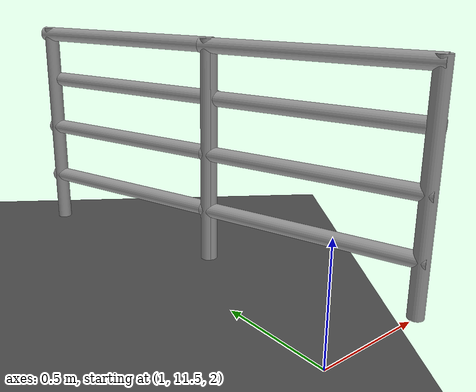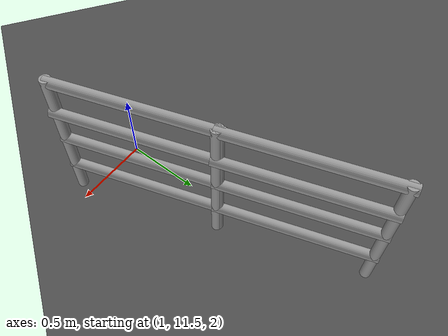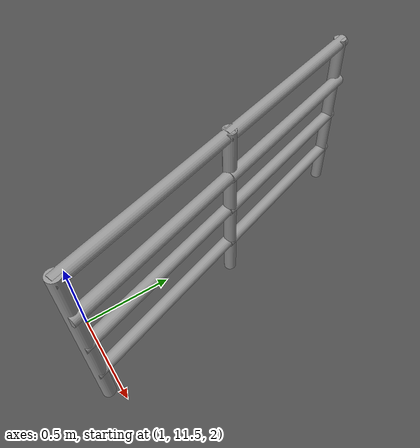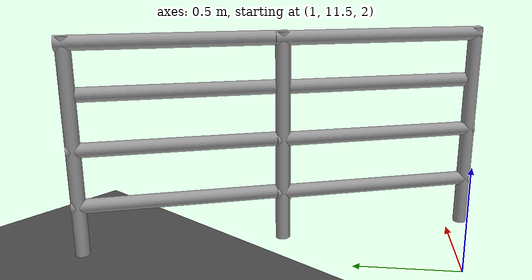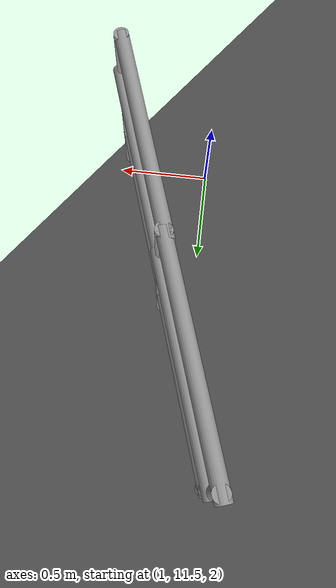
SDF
<sdf version="1.6">
 <world name="default">
  <model name="ground_plane">
   <static>1</static>
   <link name="link">
    <collision name="collision">
     <geometry><plane><normal>0 0 1</normal><size>100 100</size></plane></geometry>
     <surface><friction><ode><mu>100</mu><mu2>50</mu2></ode></friction></surface>
    </collision>
    <visual name="visual">
     <cast_shadows>0</cast_shadows>
     <geometry><plane><normal>0 0 1</normal><size>100 100</size></plane></geometry>
     <material>
      <script><uri>file://media/materials/scripts/gazebo.material</uri><name>Gazebo/Grey</name></script>
     </material>
    </visual>
   </link>
  </model>
  <model name="indoor_fence_0">
   <link name="link">
    <inertial>
     <mass>1</mass>
     <inertia><ixx>0.145833</ixx><ixy>0</ixy><ixz>0</ixz><iyy>0.145833</iyy><iyz>0</iyz><izz>0.125</izz></inertia>
    </inertial>
    <pose>0.071704 -0.128855 0 0 -0 0</pose>
    <visual name="visual">
     <geometry><cylinder><radius>0.0332942</radius><length>1</length></cylinder></geometry>
     <material>
      <script><name>Gazebo/Grey</name><uri>file://media/materials/scripts/gazebo.material</uri></script>
      <shader type="pixel"/>
     </material>
    </visual>
    <collision name="collision">
     <geometry><cylinder><radius>0.033294</radius><length>1</length></cylinder></geometry>
     <surface>
      <friction>
       <ode><mu>1</mu><mu2>1</mu2><fdir1>0 0 0</fdir1><slip1>0</slip1><slip2>0</slip2></ode>
       <torsional>
        <coefficient>1</coefficient>
        <patch_radius>0</patch_radius>
        <surface_radius>0</surface_radius>
        <use_patch_radius>1</use_patch_radius>
        <ode><slip>0</slip></ode>
       </torsional>
      </friction>
      <bounce><restitution_coefficient>0</restitution_coefficient><threshold>1e+06</threshold></bounce>
      <contact>
       <collide_without_contact>0</collide_without_contact>
       <collide_without_contact_bitmask>1</collide_without_contact_bitmask>
       <collide_bitmask>1</collide_bitmask>
       <ode>
        <soft_cfm>0</soft_cfm>
        <soft_erp>0.2</soft_erp>
        <kp>1e+13</kp>
        <kd>1</kd>
        <max_vel>0.01</max_vel>
        <min_depth>0</min_depth>
       </ode>
       <bullet>
        <split_impulse>1</split_impulse>
        <split_impulse_penetration_threshold>-0.01</split_impulse_penetration_threshold>
        <soft_cfm>0</soft_cfm>
        <soft_erp>0.2</soft_erp>
        <kp>1e+13</kp>
        <kd>1</kd>
       </bullet>
      </contact>
     </surface>
    </collision>
   </link>
   <link name="link_clone">
    <inertial>
     <mass>1</mass>
     <inertia><ixx>0.145833</ixx><ixy>0</ixy><ixz>0</ixz><iyy>0.145833</iyy><iyz>0</iyz><izz>0.125</izz></inertia>
    </inertial>
    <pose>0.369391 -1.02864 0 0 -0 0</pose>
    <visual name="visual">
     <geometry><cylinder><radius>0.0332942</radius><length>1</length></cylinder></geometry>
     <material>
      <script><name>Gazebo/Grey</name><uri>file://media/materials/scripts/gazebo.material</uri></script>
      <shader type="pixel"/>
     </material>
    </visual>
    <collision name="collision">
     <geometry><cylinder><radius>0.033294</radius><length>1</length></cylinder></geometry>
     <surface>
      <friction>
       <ode><mu>1</mu><mu2>1</mu2><fdir1>0 0 0</fdir1><slip1>0</slip1><slip2>0</slip2></ode>
       <torsional>
        <coefficient>1</coefficient>
        <patch_radius>0</patch_radius>
        <surface_radius>0</surface_radius>
        <use_patch_radius>1</use_patch_radius>
        <ode><slip>0</slip></ode>
       </torsional>
      </friction>
      <bounce><restitution_coefficient>0</restitution_coefficient><threshold>1e+06</threshold></bounce>
      <contact>
       <collide_without_contact>0</collide_without_contact>
       <collide_without_contact_bitmask>1</collide_without_contact_bitmask>
       <collide_bitmask>1</collide_bitmask>
       <ode>
        <soft_cfm>0</soft_cfm>
        <soft_erp>0.2</soft_erp>
        <kp>1e+13</kp>
        <kd>1</kd>
        <max_vel>0.01</max_vel>
        <min_depth>0</min_depth>
       </ode>
       <bullet>
        <split_impulse>1</split_impulse>
        <split_impulse_penetration_threshold>-0.01</split_impulse_penetration_threshold>
        <soft_cfm>0</soft_cfm>
        <soft_erp>0.2</soft_erp>
        <kp>1e+13</kp>
        <kd>1</kd>
       </bullet>
      </contact>
     </surface>
    </collision>
   </link>
   <link name="link_clone_0">
    <inertial>
     <mass>1</mass>
     <inertia><ixx>0.145833</ixx><ixy>0</ixy><ixz>0</ixz><iyy>0.145833</iyy><iyz>0</iyz><izz>0.125</izz></inertia>
    </inertial>
    <pose>0.220035 -0.575022 -0.262394 -1.57275 0.000646 0.319166</pose>
    <visual name="visual">
     <geometry><cylinder><radius>0.0332942</radius><length>1</length></cylinder></geometry>
     <material>
      <script><name>Gazebo/Grey</name><uri>file://media/materials/scripts/gazebo.material</uri></script>
      <shader type="pixel"/>
     </material>
    </visual>
    <collision name="collision">
     <geometry><cylinder><radius>0.033294</radius><length>1</length></cylinder></geometry>
     <surface>
      <friction>
       <ode><mu>1</mu><mu2>1</mu2><fdir1>0 0 0</fdir1><slip1>0</slip1><slip2>0</slip2></ode>
       <torsional>
        <coefficient>1</coefficient>
        <patch_radius>0</patch_radius>
        <surface_radius>0</surface_radius>
        <use_patch_radius>1</use_patch_radius>
        <ode><slip>0</slip></ode>
       </torsional>
      </friction>
      <bounce><restitution_coefficient>0</restitution_coefficient><threshold>1e+06</threshold></bounce>
      <contact>
       <collide_without_contact>0</collide_without_contact>
       <collide_without_contact_bitmask>1</collide_without_contact_bitmask>
       <collide_bitmask>1</collide_bitmask>
       <ode>
        <soft_cfm>0</soft_cfm>
        <soft_erp>0.2</soft_erp>
        <kp>1e+13</kp>
        <kd>1</kd>
        <max_vel>0.01</max_vel>
        <min_depth>0</min_depth>
       </ode>
       <bullet>
        <split_impulse>1</split_impulse>
        <split_impulse_penetration_threshold>-0.01</split_impulse_penetration_threshold>
        <soft_cfm>0</soft_cfm>
        <soft_erp>0.2</soft_erp>
        <kp>1e+13</kp>
        <kd>1</kd>
       </bullet>
      </contact>
     </surface>
    </collision>
   </link>
   <link name="link_clone_0_clone">
    <inertial>
     <mass>1</mass>
     <inertia><ixx>0.145833</ixx><ixy>0</ixy><ixz>0</ixz><iyy>0.145833</iyy><iyz>0</iyz><izz>0.125</izz></inertia>
    </inertial>
    <pose>0.220715 -0.57597 9e-06 -1.57275 0.000646 0.319166</pose>
    <visual name="visual">
     <geometry><cylinder><radius>0.0332942</radius><length>1</length></cylinder></geometry>
     <material>
      <script><name>Gazebo/Grey</name><uri>file://media/materials/scripts/gazebo.material</uri></script>
      <shader type="pixel"/>
     </material>
    </visual>
    <collision name="collision">
     <geometry><cylinder><radius>0.033294</radius><length>1</length></cylinder></geometry>
     <surface>
      <friction>
       <ode><mu>1</mu><mu2>1</mu2><fdir1>0 0 0</fdir1><slip1>0</slip1><slip2>0</slip2></ode>
       <torsional>
        <coefficient>1</coefficient>
        <patch_radius>0</patch_radius>
        <surface_radius>0</surface_radius>
        <use_patch_radius>1</use_patch_radius>
        <ode><slip>0</slip></ode>
       </torsional>
      </friction>
      <bounce><restitution_coefficient>0</restitution_coefficient><threshold>1e+06</threshold></bounce>
      <contact>
       <collide_without_contact>0</collide_without_contact>
       <collide_without_contact_bitmask>1</collide_without_contact_bitmask>
       <collide_bitmask>1</collide_bitmask>
       <ode>
        <soft_cfm>0</soft_cfm>
        <soft_erp>0.2</soft_erp>
        <kp>1e+13</kp>
        <kd>1</kd>
        <max_vel>0.01</max_vel>
        <min_depth>0</min_depth>
       </ode>
       <bullet>
        <split_impulse>1</split_impulse>
        <split_impulse_penetration_threshold>-0.01</split_impulse_penetration_threshold>
        <soft_cfm>0</soft_cfm>
        <soft_erp>0.2</soft_erp>
        <kp>1e+13</kp>
        <kd>1</kd>
       </bullet>
      </contact>
     </surface>
    </collision>
   </link>
   <link name="link_clone_0_clone_0">
    <inertial>
     <mass>1</mass>
     <inertia><ixx>0.145833</ixx><ixy>0</ixy><ixz>0</ixz><iyy>0.145833</iyy><iyz>0</iyz><izz>0.125</izz></inertia>
    </inertial>
    <pose>0.236881 -0.573625 0.245272 -1.57275 0.000646 0.319166</pose>
    <visual name="visual">
     <geometry><cylinder><radius>0.0332942</radius><length>1</length></cylinder></geometry>
     <material>
      <script><name>Gazebo/Grey</name><uri>file://media/materials/scripts/gazebo.material</uri></script>
      <shader type="pixel"/>
     </material>
    </visual>
    <collision name="collision">
     <geometry><cylinder><radius>0.033294</radius><length>1</length></cylinder></geometry>
     <surface>
      <friction>
       <ode><mu>1</mu><mu2>1</mu2><fdir1>0 0 0</fdir1><slip1>0</slip1><slip2>0</slip2></ode>
       <torsional>
        <coefficient>1</coefficient>
        <patch_radius>0</patch_radius>
        <surface_radius>0</surface_radius>
        <use_patch_radius>1</use_patch_radius>
        <ode><slip>0</slip></ode>
       </torsional>
      </friction>
      <bounce><restitution_coefficient>0</restitution_coefficient><threshold>1e+06</threshold></bounce>
      <contact>
       <collide_without_contact>0</collide_without_contact>
       <collide_without_contact_bitmask>1</collide_without_contact_bitmask>
       <collide_bitmask>1</collide_bitmask>
       <ode>
        <soft_cfm>0</soft_cfm>
        <soft_erp>0.2</soft_erp>
        <kp>1e+13</kp>
        <kd>1</kd>
        <max_vel>0.01</max_vel>
        <min_depth>0</min_depth>
       </ode>
       <bullet>
        <split_impulse>1</split_impulse>
        <split_impulse_penetration_threshold>-0.01</split_impulse_penetration_threshold>
        <soft_cfm>0</soft_cfm>
        <soft_erp>0.2</soft_erp>
        <kp>1e+13</kp>
        <kd>1</kd>
       </bullet>
      </contact>
     </surface>
    </collision>
   </link>
   <link name="link_clone_0_clone_1">
    <inertial>
     <mass>1</mass>
     <inertia><ixx>0.145833</ixx><ixy>0</ixy><ixz>0</ixz><iyy>0.145833</iyy><iyz>0</iyz><izz>0.125</izz></inertia>
    </inertial>
    <pose>0.215457 -0.570916 0.471531 -1.57275 0.000646 0.319166</pose>
    <visual name="visual">
     <geometry><cylinder><radius>0.0332942</radius><length>1</length></cylinder></geometry>
     <material>
      <script><name>Gazebo/Grey</name><uri>file://media/materials/scripts/gazebo.material</uri></script>
      <shader type="pixel"/>
     </material>
    </visual>
    <collision name="collision">
     <geometry><cylinder><radius>0.033294</radius><length>1</length></cylinder></geometry>
     <surface>
      <friction>
       <ode><mu>1</mu><mu2>1</mu2><fdir1>0 0 0</fdir1><slip1>0</slip1><slip2>0</slip2></ode>
       <torsional>
        <coefficient>1</coefficient>
        <patch_radius>0</patch_radius>
        <surface_radius>0</surface_radius>
        <use_patch_radius>1</use_patch_radius>
        <ode><slip>0</slip></ode>
       </torsional>
      </friction>
      <bounce><restitution_coefficient>0</restitution_coefficient><threshold>1e+06</threshold></bounce>
      <contact>
       <collide_without_contact>0</collide_without_contact>
       <collide_without_contact_bitmask>1</collide_without_contact_bitmask>
       <collide_bitmask>1</collide_bitmask>
       <ode>
        <soft_cfm>0</soft_cfm>
        <soft_erp>0.2</soft_erp>
        <kp>1e+13</kp>
        <kd>1</kd>
        <max_vel>0.01</max_vel>
        <min_depth>0</min_depth>
       </ode>
       <bullet>
        <split_impulse>1</split_impulse>
        <split_impulse_penetration_threshold>-0.01</split_impulse_penetration_threshold>
        <soft_cfm>0</soft_cfm>
        <soft_erp>0.2</soft_erp>
        <kp>1e+13</kp>
        <kd>1</kd>
       </bullet>
      </contact>
     </surface>
    </collision>
   </link>
   <static>1</static>
   <pose>1.07576 12.4722 2.56606 0 -0 0</pose>
  </model>
  <model name="indoor_fence_1">
   <link name="link">
    <inertial>
     <mass>1</mass>
     <inertia><ixx>0.145833</ixx><ixy>0</ixy><ixz>0</ixz><iyy>0.145833</iyy><iyz>0</iyz><izz>0.125</izz></inertia>
    </inertial>
    <pose>0.071704 -0.128855 0 0 -0 0</pose>
    <visual name="visual">
     <geometry><cylinder><radius>0.0332942</radius><length>1</length></cylinder></geometry>
     <material>
      <script><name>Gazebo/Grey</name><uri>file://media/materials/scripts/gazebo.material</uri></script>
      <shader type="pixel"/>
     </material>
    </visual>
    <collision name="collision">
     <geometry><cylinder><radius>0.033294</radius><length>1</length></cylinder></geometry>
     <surface>
      <friction>
       <ode><mu>1</mu><mu2>1</mu2><fdir1>0 0 0</fdir1><slip1>0</slip1><slip2>0</slip2></ode>
       <torsional>
        <coefficient>1</coefficient>
        <patch_radius>0</patch_radius>
        <surface_radius>0</surface_radius>
        <use_patch_radius>1</use_patch_radius>
        <ode><slip>0</slip></ode>
       </torsional>
      </friction>
      <bounce><restitution_coefficient>0</restitution_coefficient><threshold>1e+06</threshold></bounce>
      <contact>
       <collide_without_contact>0</collide_without_contact>
       <collide_without_contact_bitmask>1</collide_without_contact_bitmask>
       <collide_bitmask>1</collide_bitmask>
       <ode>
        <soft_cfm>0</soft_cfm>
        <soft_erp>0.2</soft_erp>
        <kp>1e+13</kp>
        <kd>1</kd>
        <max_vel>0.01</max_vel>
        <min_depth>0</min_depth>
       </ode>
       <bullet>
        <split_impulse>1</split_impulse>
        <split_impulse_penetration_threshold>-0.01</split_impulse_penetration_threshold>
        <soft_cfm>0</soft_cfm>
        <soft_erp>0.2</soft_erp>
        <kp>1e+13</kp>
        <kd>1</kd>
       </bullet>
      </contact>
     </surface>
    </collision>
   </link>
   <link name="link_clone">
    <inertial>
     <mass>1</mass>
     <inertia><ixx>0.145833</ixx><ixy>0</ixy><ixz>0</ixz><iyy>0.145833</iyy><iyz>0</iyz><izz>0.125</izz></inertia>
    </inertial>
    <pose>0.369391 -1.02864 0 0 -0 0</pose>
    <visual name="visual">
     <geometry><cylinder><radius>0.0332942</radius><length>1</length></cylinder></geometry>
     <material>
      <script><name>Gazebo/Grey</name><uri>file://media/materials/scripts/gazebo.material</uri></script>
      <shader type="pixel"/>
     </material>
    </visual>
    <collision name="collision">
     <geometry><cylinder><radius>0.033294</radius><length>1</length></cylinder></geometry>
     <surface>
      <friction>
       <ode><mu>1</mu><mu2>1</mu2><fdir1>0 0 0</fdir1><slip1>0</slip1><slip2>0</slip2></ode>
       <torsional>
        <coefficient>1</coefficient>
        <patch_radius>0</patch_radius>
        <surface_radius>0</surface_radius>
        <use_patch_radius>1</use_patch_radius>
        <ode><slip>0</slip></ode>
       </torsional>
      </friction>
      <bounce><restitution_coefficient>0</restitution_coefficient><threshold>1e+06</threshold></bounce>
      <contact>
       <collide_without_contact>0</collide_without_contact>
       <collide_without_contact_bitmask>1</collide_without_contact_bitmask>
       <collide_bitmask>1</collide_bitmask>
       <ode>
        <soft_cfm>0</soft_cfm>
        <soft_erp>0.2</soft_erp>
        <kp>1e+13</kp>
        <kd>1</kd>
        <max_vel>0.01</max_vel>
        <min_depth>0</min_depth>
       </ode>
       <bullet>
        <split_impulse>1</split_impulse>
        <split_impulse_penetration_threshold>-0.01</split_impulse_penetration_threshold>
        <soft_cfm>0</soft_cfm>
        <soft_erp>0.2</soft_erp>
        <kp>1e+13</kp>
        <kd>1</kd>
       </bullet>
      </contact>
     </surface>
    </collision>
   </link>
   <link name="link_clone_0">
    <inertial>
     <mass>1</mass>
     <inertia><ixx>0.145833</ixx><ixy>0</ixy><ixz>0</ixz><iyy>0.145833</iyy><iyz>0</iyz><izz>0.125</izz></inertia>
    </inertial>
    <pose>0.220035 -0.575022 -0.262394 -1.57275 0.000646 0.319166</pose>
    <visual name="visual">
     <geometry><cylinder><radius>0.0332942</radius><length>1</length></cylinder></geometry>
     <material>
      <script><name>Gazebo/Grey</name><uri>file://media/materials/scripts/gazebo.material</uri></script>
      <shader type="pixel"/>
     </material>
    </visual>
    <collision name="collision">
     <geometry><cylinder><radius>0.033294</radius><length>1</length></cylinder></geometry>
     <surface>
      <friction>
       <ode><mu>1</mu><mu2>1</mu2><fdir1>0 0 0</fdir1><slip1>0</slip1><slip2>0</slip2></ode>
       <torsional>
        <coefficient>1</coefficient>
        <patch_radius>0</patch_radius>
        <surface_radius>0</surface_radius>
        <use_patch_radius>1</use_patch_radius>
        <ode><slip>0</slip></ode>
       </torsional>
      </friction>
      <bounce><restitution_coefficient>0</restitution_coefficient><threshold>1e+06</threshold></bounce>
      <contact>
       <collide_without_contact>0</collide_without_contact>
       <collide_without_contact_bitmask>1</collide_without_contact_bitmask>
       <collide_bitmask>1</collide_bitmask>
       <ode>
        <soft_cfm>0</soft_cfm>
        <soft_erp>0.2</soft_erp>
        <kp>1e+13</kp>
        <kd>1</kd>
        <max_vel>0.01</max_vel>
        <min_depth>0</min_depth>
       </ode>
       <bullet>
        <split_impulse>1</split_impulse>
        <split_impulse_penetration_threshold>-0.01</split_impulse_penetration_threshold>
        <soft_cfm>0</soft_cfm>
        <soft_erp>0.2</soft_erp>
        <kp>1e+13</kp>
        <kd>1</kd>
       </bullet>
      </contact>
     </surface>
    </collision>
   </link>
   <link name="link_clone_0_clone">
    <inertial>
     <mass>1</mass>
     <inertia><ixx>0.145833</ixx><ixy>0</ixy><ixz>0</ixz><iyy>0.145833</iyy><iyz>0</iyz><izz>0.125</izz></inertia>
    </inertial>
    <pose>0.220715 -0.57597 9e-06 -1.57275 0.000646 0.319166</pose>
    <visual name="visual">
     <geometry><cylinder><radius>0.0332942</radius><length>1</length></cylinder></geometry>
     <material>
      <script><name>Gazebo/Grey</name><uri>file://media/materials/scripts/gazebo.material</uri></script>
      <shader type="pixel"/>
     </material>
    </visual>
    <collision name="collision">
     <geometry><cylinder><radius>0.033294</radius><length>1</length></cylinder></geometry>
     <surface>
      <friction>
       <ode><mu>1</mu><mu2>1</mu2><fdir1>0 0 0</fdir1><slip1>0</slip1><slip2>0</slip2></ode>
       <torsional>
        <coefficient>1</coefficient>
        <patch_radius>0</patch_radius>
        <surface_radius>0</surface_radius>
        <use_patch_radius>1</use_patch_radius>
        <ode><slip>0</slip></ode>
       </torsional>
      </friction>
      <bounce><restitution_coefficient>0</restitution_coefficient><threshold>1e+06</threshold></bounce>
      <contact>
       <collide_without_contact>0</collide_without_contact>
       <collide_without_contact_bitmask>1</collide_without_contact_bitmask>
       <collide_bitmask>1</collide_bitmask>
       <ode>
        <soft_cfm>0</soft_cfm>
        <soft_erp>0.2</soft_erp>
        <kp>1e+13</kp>
        <kd>1</kd>
        <max_vel>0.01</max_vel>
        <min_depth>0</min_depth>
       </ode>
       <bullet>
        <split_impulse>1</split_impulse>
        <split_impulse_penetration_threshold>-0.01</split_impulse_penetration_threshold>
        <soft_cfm>0</soft_cfm>
        <soft_erp>0.2</soft_erp>
        <kp>1e+13</kp>
        <kd>1</kd>
       </bullet>
      </contact>
     </surface>
    </collision>
   </link>
   <link name="link_clone_0_clone_0">
    <inertial>
     <mass>1</mass>
     <inertia><ixx>0.145833</ixx><ixy>0</ixy><ixz>0</ixz><iyy>0.145833</iyy><iyz>0</iyz><izz>0.125</izz></inertia>
    </inertial>
    <pose>0.236881 -0.573625 0.245272 -1.57275 0.000646 0.319166</pose>
    <visual name="visual">
     <geometry><cylinder><radius>0.0332942</radius><length>1</length></cylinder></geometry>
     <material>
      <script><name>Gazebo/Grey</name><uri>file://media/materials/scripts/gazebo.material</uri></script>
      <shader type="pixel"/>
     </material>
    </visual>
    <collision name="collision">
     <geometry><cylinder><radius>0.033294</radius><length>1</length></cylinder></geometry>
     <surface>
      <friction>
       <ode><mu>1</mu><mu2>1</mu2><fdir1>0 0 0</fdir1><slip1>0</slip1><slip2>0</slip2></ode>
       <torsional>
        <coefficient>1</coefficient>
        <patch_radius>0</patch_radius>
        <surface_radius>0</surface_radius>
        <use_patch_radius>1</use_patch_radius>
        <ode><slip>0</slip></ode>
       </torsional>
      </friction>
      <bounce><restitution_coefficient>0</restitution_coefficient><threshold>1e+06</threshold></bounce>
      <contact>
       <collide_without_contact>0</collide_without_contact>
       <collide_without_contact_bitmask>1</collide_without_contact_bitmask>
       <collide_bitmask>1</collide_bitmask>
       <ode>
        <soft_cfm>0</soft_cfm>
        <soft_erp>0.2</soft_erp>
        <kp>1e+13</kp>
        <kd>1</kd>
        <max_vel>0.01</max_vel>
        <min_depth>0</min_depth>
       </ode>
       <bullet>
        <split_impulse>1</split_impulse>
        <split_impulse_penetration_threshold>-0.01</split_impulse_penetration_threshold>
        <soft_cfm>0</soft_cfm>
        <soft_erp>0.2</soft_erp>
        <kp>1e+13</kp>
        <kd>1</kd>
       </bullet>
      </contact>
     </surface>
    </collision>
   </link>
   <link name="link_clone_0_clone_1">
    <inertial>
     <mass>1</mass>
     <inertia><ixx>0.145833</ixx><ixy>0</ixy><ixz>0</ixz><iyy>0.145833</iyy><iyz>0</iyz><izz>0.125</izz></inertia>
    </inertial>
    <pose>0.215457 -0.570916 0.471531 -1.57275 0.000646 0.319166</pose>
    <visual name="visual">
     <geometry><cylinder><radius>0.0332942</radius><length>1</length></cylinder></geometry>
     <material>
      <script><name>Gazebo/Grey</name><uri>file://media/materials/scripts/gazebo.material</uri></script>
      <shader type="pixel"/>
     </material>
    </visual>
    <collision name="collision">
     <geometry><cylinder><radius>0.033294</radius><length>1</length></cylinder></geometry>
     <surface>
      <friction>
       <ode><mu>1</mu><mu2>1</mu2><fdir1>0 0 0</fdir1><slip1>0</slip1><slip2>0</slip2></ode>
       <torsional>
        <coefficient>1</coefficient>
        <patch_radius>0</patch_radius>
        <surface_radius>0</surface_radius>
        <use_patch_radius>1</use_patch_radius>
        <ode><slip>0</slip></ode>
       </torsional>
      </friction>
      <bounce><restitution_coefficient>0</restitution_coefficient><threshold>1e+06</threshold></bounce>
      <contact>
       <collide_without_contact>0</collide_without_contact>
       <collide_without_contact_bitmask>1</collide_without_contact_bitmask>
       <collide_bitmask>1</collide_bitmask>
       <ode>
        <soft_cfm>0</soft_cfm>
        <soft_erp>0.2</soft_erp>
        <kp>1e+13</kp>
        <kd>1</kd>
        <max_vel>0.01</max_vel>
        <min_depth>0</min_depth>
       </ode>
       <bullet>
        <split_impulse>1</split_impulse>
        <split_impulse_penetration_threshold>-0.01</split_impulse_penetration_threshold>
        <soft_cfm>0</soft_cfm>
        <soft_erp>0.2</soft_erp>
        <kp>1e+13</kp>
        <kd>1</kd>
       </bullet>
      </contact>
     </surface>
    </collision>
   </link>
   <static>1</static>
   <pose>0.785416 13.3683 2.56606 0 -0 0</pose>
  </model>
  <model name="asphalt_plane_aux">
   <link name="link">
    <inertial>
     <inertia><ixx>0</ixx><ixy>0</ixy><ixz>0</ixz><iyy>0</iyy><iyz>0</iyz><izz>0</izz></inertia>
     <mass>0</mass>
    </inertial>
    <pose>0.705274 1.00977 1.01829 0 0 -0.601656</pose>
    <visual name="visual">
     <cast_shadows>0</cast_shadows>
     <geometry><box><size>7.66512 6.94659 0.1</size></box></geometry>
     <material>
      <script>
       <uri>model://asphalt_plane/materials/scripts</uri>
       <uri>model://asphalt_plane/materials/textures</uri>
       <name>vrc/asphalt</name>
      </script>
      <shader type="pixel"/>
     </material>
    </visual>
    <collision name="collision">
     <geometry><box><size>7.66512 6.94659 0.1</size></box></geometry>
     <surface>
      <friction>
       <ode><mu>1</mu><mu2>1</mu2><fdir1>0 0 0</fdir1><slip1>0</slip1><slip2>0</slip2></ode>
       <torsional>
        <coefficient>1</coefficient>
        <patch_radius>0</patch_radius>
        <surface_radius>0</surface_radius>
        <use_patch_radius>1</use_patch_radius>
        <ode><slip>0</slip></ode>
       </torsional>
      </friction>
      <bounce><restitution_coefficient>0</restitution_coefficient><threshold>1e+06</threshold></bounce>
      <contact>
       <collide_without_contact>0</collide_without_contact>
       <collide_without_contact_bitmask>1</collide_without_contact_bitmask>
       <collide_bitmask>1</collide_bitmask>
       <ode>
        <soft_cfm>0</soft_cfm>
        <soft_erp>0.2</soft_erp>
        <kp>1e+13</kp>
        <kd>1</kd>
        <max_vel>0.01</max_vel>
        <min_depth>0</min_depth>
       </ode>
       <bullet>
        <split_impulse>1</split_impulse>
        <split_impulse_penetration_threshold>-0.01</split_impulse_penetration_threshold>
        <soft_cfm>0</soft_cfm>
        <soft_erp>0.2</soft_erp>
        <kp>1e+13</kp>
        <kd>1</kd>
       </bullet>
      </contact>
     </surface>
    </collision>
   </link>
   <static>1</static>
   <pose>-1.60988 12.7511 0 0 -0 0</pose>
  </model>
 </world>
</sdf>
